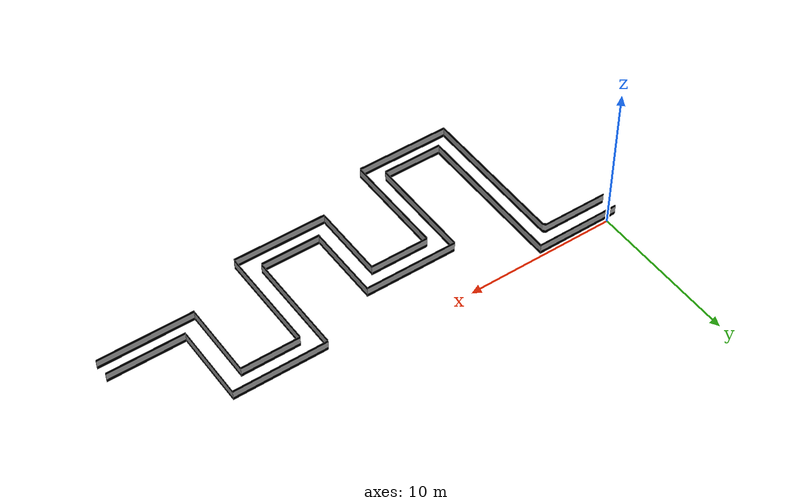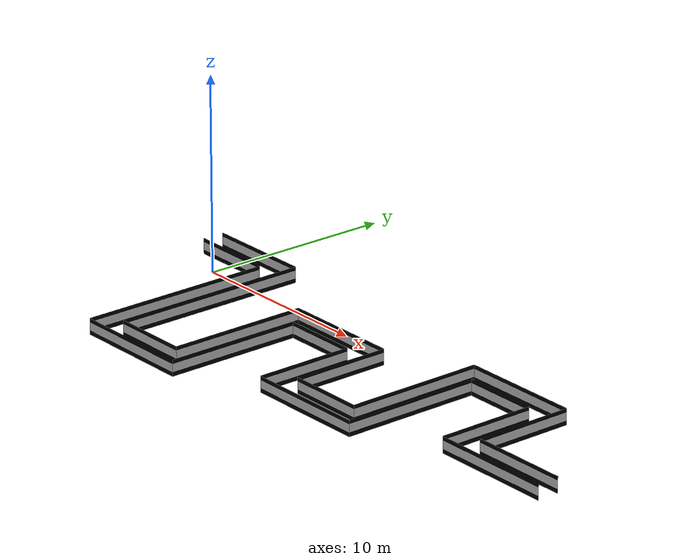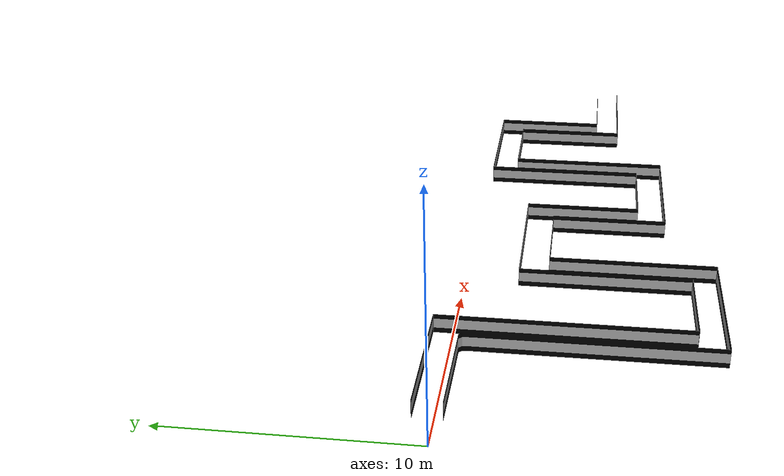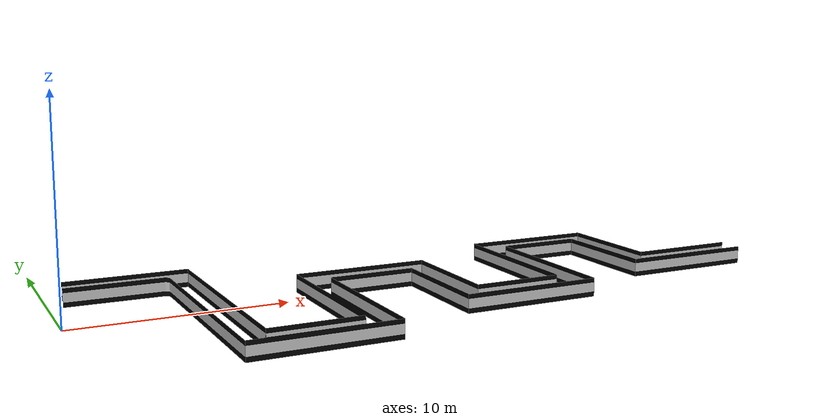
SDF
<?xml version="1.0" ?>
<sdf version='1.5'>
<model name='cwalls'>
<static>true</static>
<link name="link">
   <pose frame=''>0 0 0.01 0 0 0</pose>
  <visual name='corridor_ground_toppingV'>
    <cast_shadows>false</cast_shadows>
    <geometry>
      <mesh>
        <scale>1.0 1.0 1.0</scale>
        <uri>model://cwalls/midwall.dae</uri>
      </mesh>
    </geometry>
  </visual>
</link>
</model>
</sdf>
